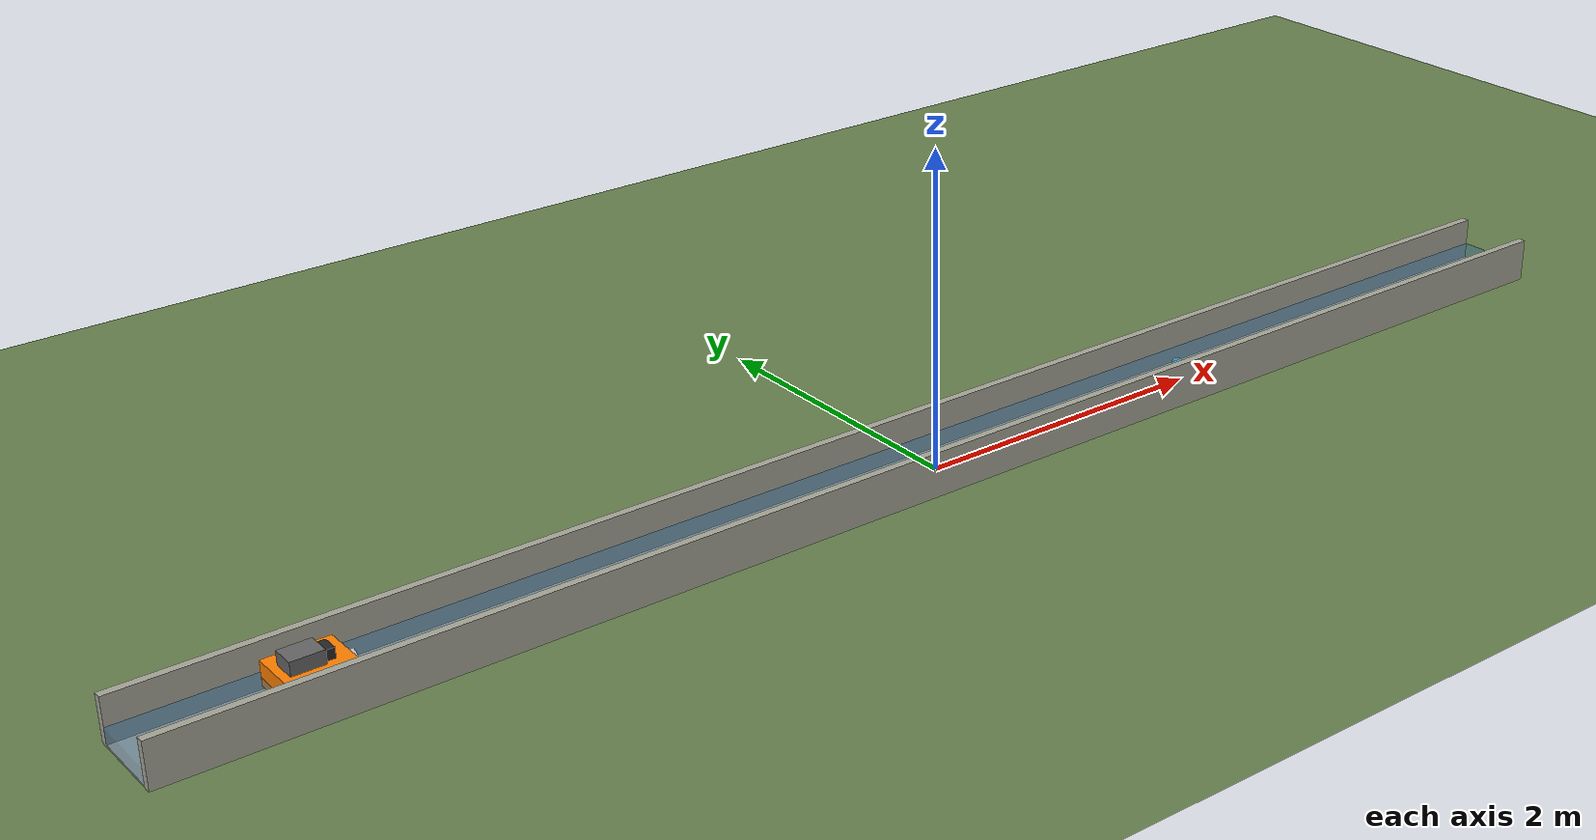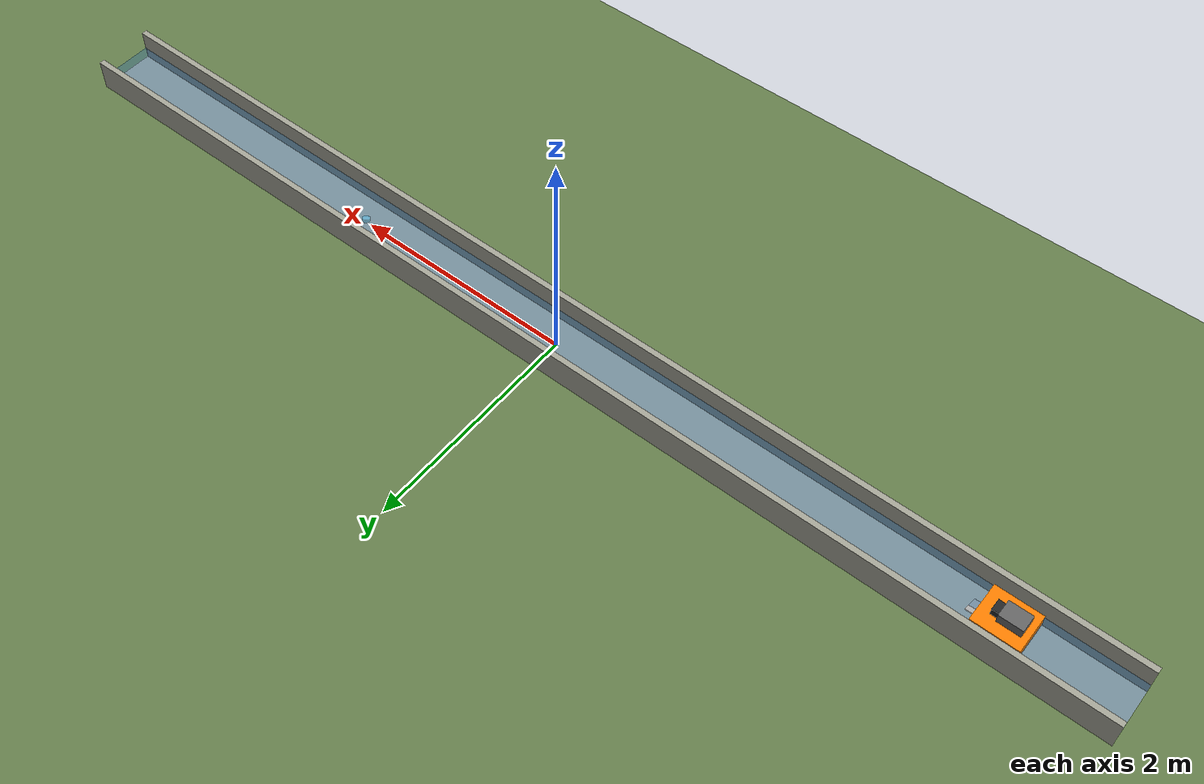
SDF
<?xml version="1.0"?>
<sdf version="1.9">
  <world name="drain_cleaning">

    <physics name="1ms" type="ignored">
      <max_step_size>0.001</max_step_size>
      <real_time_factor>1.0</real_time_factor>
    </physics>

    <plugin filename="gz-sim-physics-system"
            name="gz::sim::systems::Physics"/>
    <plugin filename="gz-sim-user-commands-system"
            name="gz::sim::systems::UserCommands"/>
    <plugin filename="gz-sim-scene-broadcaster-system"
            name="gz::sim::systems::SceneBroadcaster"/>

    <scene>
      <ambient>0.6 0.6 0.6 1</ambient>
      <background>0.4 0.7 0.9 1</background>
      <shadows>true</shadows>
    </scene>

    <light type="directional" name="sun">
      <cast_shadows>true</cast_shadows>
      <pose>0 0 10 0 0 0</pose>
      <diffuse>1.0 0.95 0.85 1</diffuse>
      <specular>0.5 0.5 0.5 1</specular>
      <direction>-0.5 0.3 -1.0</direction>
    </light>

    <!-- Ground plane -->
    <model name="ground_plane">
      <static>true</static>
      <link name="ground_link">
        <collision name="ground_collision">
          <geometry>
            <plane><normal>0 0 1</normal><size>50 50</size></plane>
          </geometry>
        </collision>
        <visual name="ground_visual">
          <geometry>
            <plane><normal>0 0 1</normal><size>50 50</size></plane>
          </geometry>
          <material>
            <ambient>0.35 0.45 0.25 1</ambient>
            <diffuse>0.4 0.5 0.3 1</diffuse>
          </material>
        </visual>
      </link>
    </model>

    <!-- Drain channel (inline, no include) -->
    <model name="drain_channel">
      <static>true</static>
      <pose>0 0 -0.025 0 0 0</pose>

      <link name="floor">
        <collision name="floor_col">
          <geometry><box><size>10.0 0.45 0.05</size></box></geometry>
          <surface><friction><ode><mu>0.5</mu><mu2>0.5</mu2></ode></friction></surface>
        </collision>
        <visual name="floor_vis">
          <geometry><box><size>10.0 0.45 0.05</size></box></geometry>
          <material>
            <ambient>0.6 0.6 0.55 1</ambient>
            <diffuse>0.7 0.7 0.65 1</diffuse>
          </material>
        </visual>
      </link>

      <link name="left_wall">
        <pose>0 0.25 0.15 0 0 0</pose>
        <collision name="lw_col">
          <geometry><box><size>10.0 0.05 0.30</size></box></geometry>
        </collision>
        <visual name="lw_vis">
          <geometry><box><size>10.0 0.05 0.30</size></box></geometry>
          <material>
            <ambient>0.55 0.55 0.50 1</ambient>
            <diffuse>0.65 0.65 0.60 1</diffuse>
          </material>
        </visual>
      </link>

      <link name="right_wall">
        <pose>0 -0.25 0.15 0 0 0</pose>
        <collision name="rw_col">
          <geometry><box><size>10.0 0.05 0.30</size></box></geometry>
        </collision>
        <visual name="rw_vis">
          <geometry><box><size>10.0 0.05 0.30</size></box></geometry>
          <material>
            <ambient>0.55 0.55 0.50 1</ambient>
            <diffuse>0.65 0.65 0.60 1</diffuse>
          </material>
        </visual>
      </link>

      <link name="water">
        <pose>0 0 0.075 0 0 0</pose>
        <visual name="water_vis">
          <geometry><box><size>10.0 0.45 0.10</size></box></geometry>
          <material>
            <ambient>0.1 0.3 0.5 0.4</ambient>
            <diffuse>0.15 0.4 0.6 0.4</diffuse>
          </material>
          <transparency>0.6</transparency>
        </visual>
      </link>
    </model>

    <!-- AXIOM D1 robot (inline, simplified — no sensors yet) -->
    <model name="axiom_d1">
      <pose>-4.0 0 0.05 0 0 0</pose>
      <static>false</static>

      <link name="chassis">
        <pose>0 0 0.075 0 0 0</pose>
        <inertial>
          <mass>10.0</mass>
          <inertia>
            <ixx>0.121</ixx><iyy>0.152</iyy><izz>0.235</izz>
            <ixy>0</ixy><ixz>0</ixz><iyz>0</iyz>
          </inertia>
        </inertial>
        <collision name="chassis_col">
          <geometry><box><size>0.40 0.35 0.15</size></box></geometry>
        </collision>
        <visual name="chassis_vis">
          <geometry><box><size>0.40 0.35 0.15</size></box></geometry>
          <material>
            <ambient>1.0 0.5 0.0 1</ambient>
            <diffuse>1.0 0.5 0.0 1</diffuse>
          </material>
        </visual>
        <!-- Scoop -->
        <visual name="scoop_vis">
          <pose>0.22 0 -0.04 0.52 0 0</pose>
          <geometry><box><size>0.10 0.20 0.005</size></box></geometry>
          <material><ambient>0.7 0.7 0.7 1</ambient><diffuse>0.8 0.8 0.8 1</diffuse></material>
        </visual>
        <!-- Collection bin -->
        <visual name="bin_vis">
          <pose>-0.05 0 0.10 0 0 0</pose>
          <geometry><box><size>0.20 0.15 0.12</size></box></geometry>
          <material><ambient>0.3 0.3 0.3 1</ambient><diffuse>0.4 0.4 0.4 1</diffuse></material>
        </visual>
        <!-- Electronics enclosure -->
        <visual name="enclosure_vis">
          <pose>0.05 0 0.10 0 0 0</pose>
          <geometry><box><size>0.12 0.10 0.08</size></box></geometry>
          <material><ambient>0.1 0.1 0.1 1</ambient><diffuse>0.15 0.15 0.15 1</diffuse></material>
        </visual>
      </link>

      <link name="left_track">
        <pose>0 0.175 0.04 -1.5708 0 0</pose>
        <inertial>
          <mass>2.0</mass>
          <inertia>
            <ixx>0.0011</ixx><iyy>0.0011</iyy><izz>0.0016</izz>
            <ixy>0</ixy><ixz>0</ixz><iyz>0</iyz>
          </inertia>
        </inertial>
        <collision name="lt_col">
          <geometry><cylinder><radius>0.04</radius><length>0.04</length></cylinder></geometry>
          <surface><friction><ode><mu>1.0</mu><mu2>0.5</mu2></ode></friction></surface>
        </collision>
        <visual name="lt_vis">
          <geometry><cylinder><radius>0.04</radius><length>0.04</length></cylinder></geometry>
          <material><ambient>0.1 0.1 0.1 1</ambient><diffuse>0.2 0.2 0.2 1</diffuse></material>
        </visual>
      </link>

      <link name="right_track">
        <pose>0 -0.175 0.04 -1.5708 0 0</pose>
        <inertial>
          <mass>2.0</mass>
          <inertia>
            <ixx>0.0011</ixx><iyy>0.0011</iyy><izz>0.0016</izz>
            <ixy>0</ixy><ixz>0</ixz><iyz>0</iyz>
          </inertia>
        </inertial>
        <collision name="rt_col">
          <geometry><cylinder><radius>0.04</radius><length>0.04</length></cylinder></geometry>
          <surface><friction><ode><mu>1.0</mu><mu2>0.5</mu2></ode></friction></surface>
        </collision>
        <visual name="rt_vis">
          <geometry><cylinder><radius>0.04</radius><length>0.04</length></cylinder></geometry>
          <material><ambient>0.1 0.1 0.1 1</ambient><diffuse>0.2 0.2 0.2 1</diffuse></material>
        </visual>
      </link>

      <joint name="left_track_joint" type="revolute">
        <parent>chassis</parent>
        <child>left_track</child>
        <axis>
          <xyz>0 0 1</xyz>
          <limit><lower>-1e16</lower><upper>1e16</upper></limit>
        </axis>
      </joint>

      <joint name="right_track_joint" type="revolute">
        <parent>chassis</parent>
        <child>right_track</child>
        <axis>
          <xyz>0 0 1</xyz>
          <limit><lower>-1e16</lower><upper>1e16</upper></limit>
        </axis>
      </joint>

      <plugin filename="gz-sim-diff-drive-system"
              name="gz::sim::systems::DiffDrive">
        <left_joint>left_track_joint</left_joint>
        <right_joint>right_track_joint</right_joint>
        <wheel_separation>0.35</wheel_separation>
        <wheel_radius>0.04</wheel_radius>
        <max_linear_acceleration>0.5</max_linear_acceleration>
        <odom_publish_frequency>10</odom_publish_frequency>
        <topic>cmd_vel</topic>
      </plugin>
    </model>

    <!-- Debris -->
    <model name="debris_bottle">
      <static>false</static>
      <pose>2.0 0.05 0.06 0.3 0 0.5</pose>
      <link name="link">
        <inertial>
          <mass>0.03</mass>
          <inertia><ixx>0.00001</ixx><iyy>0.00001</iyy><izz>0.000005</izz><ixy>0</ixy><ixz>0</ixz><iyz>0</iyz></inertia>
        </inertial>
        <collision name="col"><geometry><cylinder><radius>0.035</radius><length>0.12</length></cylinder></geometry></collision>
        <visual name="vis">
          <geometry><cylinder><radius>0.035</radius><length>0.12</length></cylinder></geometry>
          <material><ambient>0.2 0.6 0.8 0.8</ambient><diffuse>0.3 0.7 0.9 0.8</diffuse></material>
          <transparency>0.3</transparency>
        </visual>
      </link>
    </model>

  </world>
</sdf>
